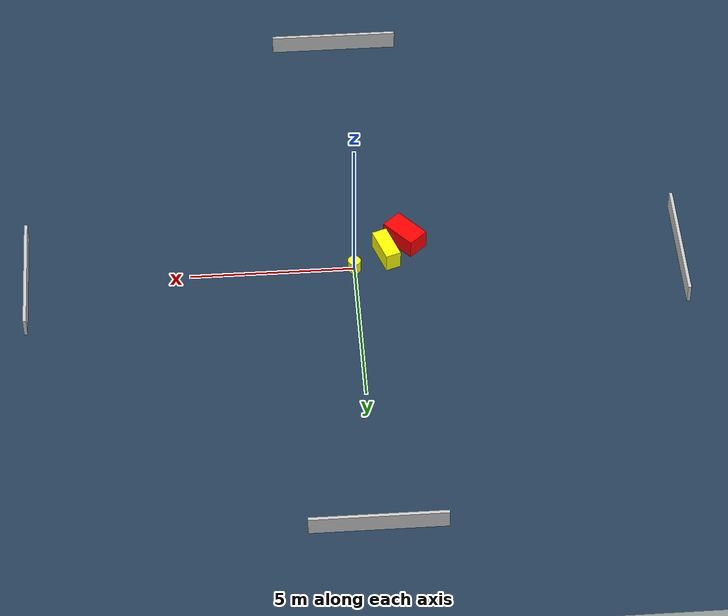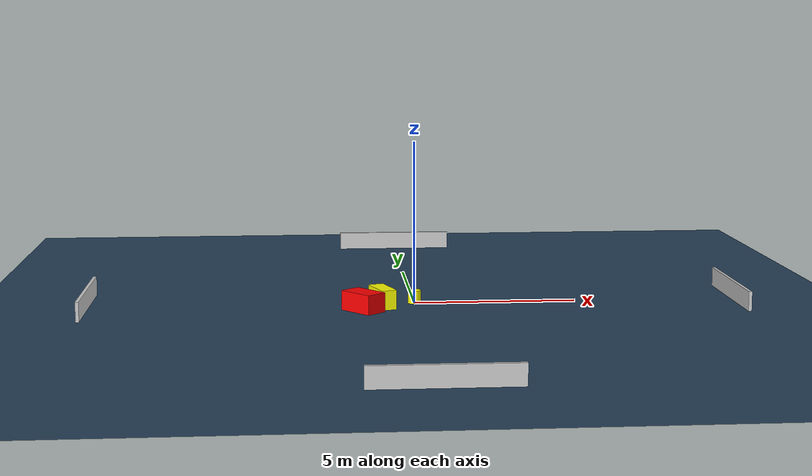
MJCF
<?xml version="1.0" ?>
<mujoco model="generated_environment">
  <option timestep="0.01" integrator="RK4" cone="elliptic"/>
  <default>
    <geom density="1"/>
  </default>
  <asset>
    <texture builtin="gradient" height="3072" name="skybox" rgb1="0.3 0.5 0.7" rgb2="0 0 0" type="skybox" width="512"/>
    <texture builtin="checker" height="300" name="groundplane" rgb1="0.2 0.3 0.4" rgb2="0.1 0.2 0.3" type="2d" width="300"/>
    <material name="groundplane" reflectance="0.2" texrepeat="5 5" texture="groundplane"/>
  </asset>
  <worldbody>
    <light dir="0 0 -1" directional="true" pos="0 0 1.5"/>
    <geom condim="3" friction="0.5 0.005 0.001" material="groundplane" name="floor" pos="0 0 0" size="0 0 0.05" type="plane"/>
    <body name="walls">
      <geom name="wall_1" condim="4" pos="-10.0 0.0 0.3" rgba="0.800000011920929 0.800000011920929 0.800000011920929 1.0" size="0.05 2.0 0.3" type="box"/>
      <geom name="wall_2" condim="4" pos="10.0 0.0 0.3" rgba="0.800000011920929 0.800000011920929 0.800000011920929 1.0" size="0.05 2.0 0.3" type="box"/>
      <geom name="wall_3" condim="4" pos="0.0 -10.0 0.3" rgba="0.800000011920929 0.800000011920929 0.800000011920929 1.0" size="2.0 0.05 0.3" type="box"/>
      <geom name="wall_4" condim="4" pos="0.0 10.0 0.3" rgba="0.800000011920929 0.800000011920929 0.800000011920929 1.0" size="2.0 0.05 0.3" type="box"/>
    </body>
    <body name="robot">
      <joint name="joint_x" type="slide" pos="0 0 0" axis="1 0 0"/>
      <joint name="joint_y" type="slide" pos="0 0 0" axis="0 1 0"/>
      <geom name="robot" type="cylinder" pos="0.0 0.0 0.2" size="0.2 0.2 0.0" mass="5.0" friction="1.0 0.005 0.0001" condim="4" rgba="1.0 1.0 0.0 1.0"/>
    </body>
    <body name="obstacle_1_movable">
      <geom name="obstacle_1_movable" condim="4" pos="-1.012738688490104 -0.4839839926223895 0.3" euler="0 0 289.0159302845587" friction="0.0 0.005 0.001" rgba="1.0 1.0 0.0 1.0" size="0.5567683884526332 0.2397280389543942 0.3" type="box" mass="0.1"/>
      <joint type="free"/>
    </body>
    <body name="obstacle_2_static">
      <geom name="obstacle_2_static" condim="4" pos="-1.628227674654414 -1.06781185978199 0.3" euler="0 0 131.24809369137822" friction="0.0 0.005 0.001" rgba="1.0 0.0 0.0 1.0" size="0.5870991154087957 0.34100039384035385 0.3" type="box"/>
    </body>
  </worldbody>
  <actuator>
    <motor name="actuator_x" joint="joint_x" gear="1" ctrlrange="-1 1"/>
    <motor name="actuator_y" joint="joint_y" gear="1" ctrlrange="-1 1"/>
  </actuator>
</mujoco>
